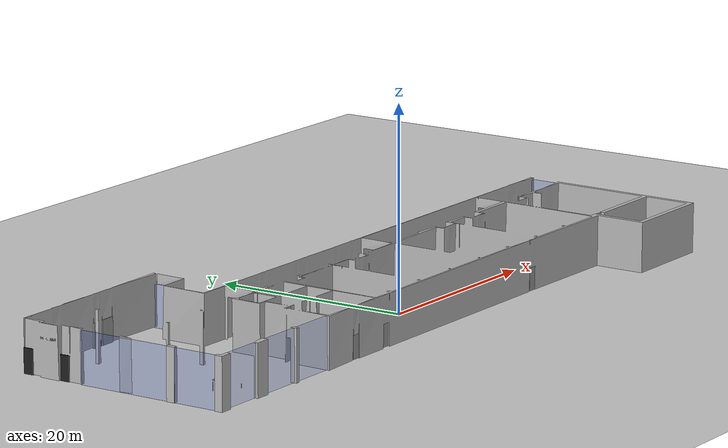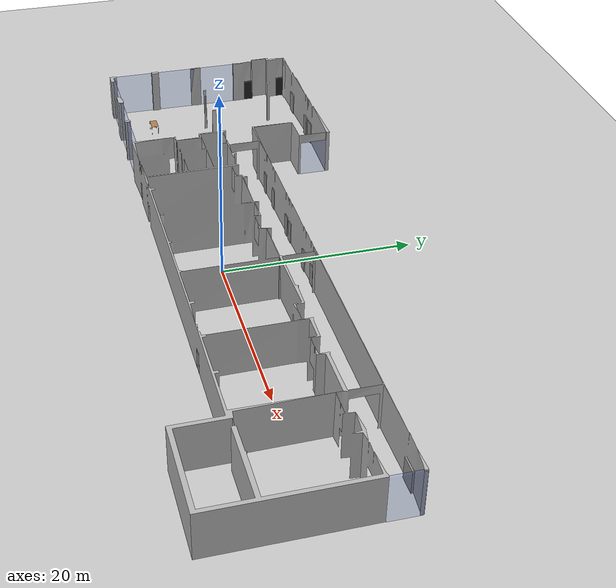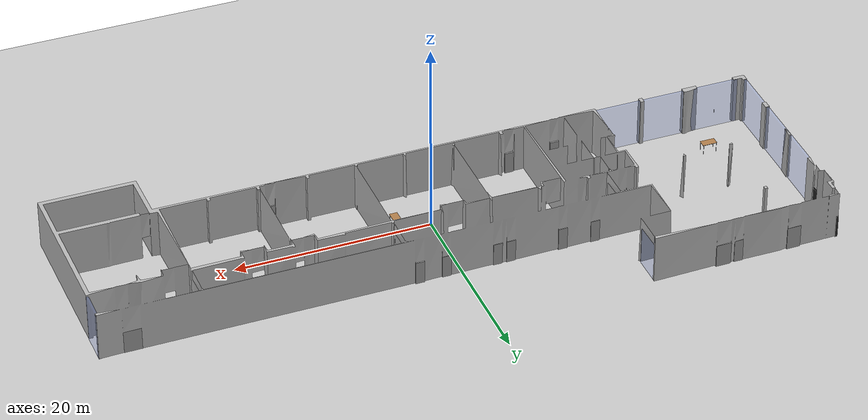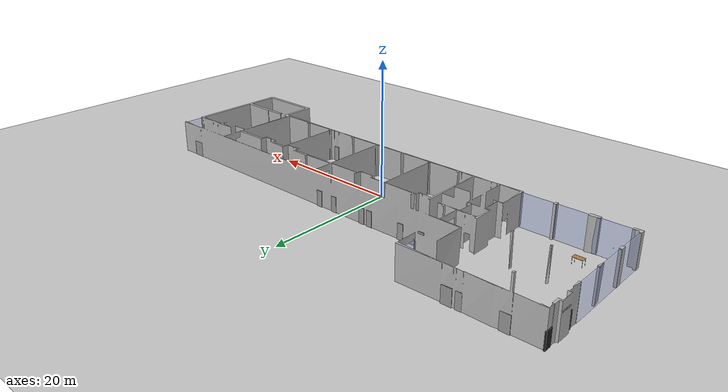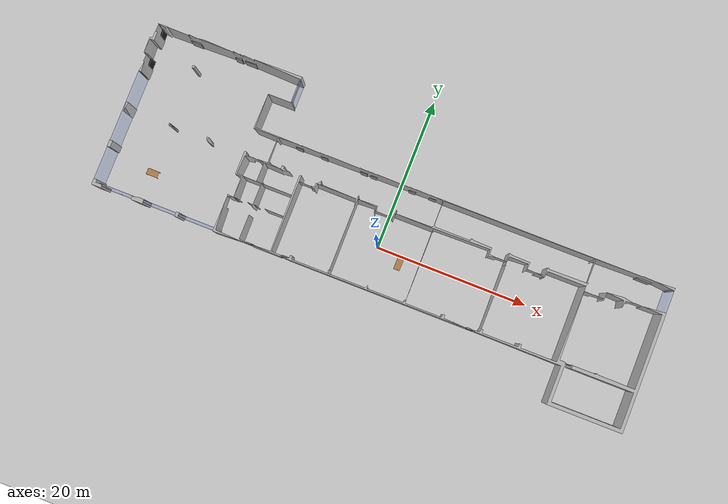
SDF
<sdf version="1.7">
 <world name="default">
  <light name="sun" type="directional">
   <pose>0 0 10 0 -0 0</pose>
   <diffuse>0.8 0.8 0.8 1</diffuse>
   <specular>0.2 0.2 0.2 1</specular>
   <attenuation>
    <range>1000</range>
    <constant>0.9</constant>
    <linear>0.01</linear>
    <quadratic>0.001</quadratic>
   </attenuation>
   <direction>-0.5 0.1 -0.9</direction>
   <spot><inner_angle>0</inner_angle><outer_angle>0</outer_angle><falloff>0</falloff></spot>
  </light>
  <model name="ground_plane">
   <static>1</static>
   <link name="link">
    <collision name="collision">
     <geometry><plane><normal>0 0 1</normal><size>100 100</size></plane></geometry>
     <surface>
      <contact><collide_bitmask>65535</collide_bitmask></contact>
      <friction><ode><mu>100</mu><mu2>50</mu2></ode></friction>
     </surface>
    </collision>
    <visual name="visual">
     <cast_shadows>0</cast_shadows>
     <geometry><plane><normal>0 0 1</normal><size>100 100</size></plane></geometry>
     <material>
      <script><uri>file://media/materials/scripts/gazebo.material</uri><name>Gazebo/Grey</name></script>
     </material>
    </visual>
   </link>
  </model>
  <gravity>0 0 -9.8</gravity>
  <magnetic_field>6e-06 2.3e-05 -4.2e-05</magnetic_field>
  <atmosphere type="adiabatic"/>
  <physics type="ode">
   <max_step_size>0.001</max_step_size>
   <real_time_factor>1</real_time_factor>
   <real_time_update_rate>1000</real_time_update_rate>
  </physics>
  <scene><ambient>0.4 0.4 0.4 1</ambient><background>0.7 0.7 0.7 1</background><shadows>1</shadows></scene>
  <spherical_coordinates>
   <surface_model>EARTH_WGS84</surface_model>
   <latitude_deg>0</latitude_deg>
   <longitude_deg>0</longitude_deg>
   <elevation>0</elevation>
   <heading_deg>0</heading_deg>
  </spherical_coordinates>
  <model name="campus_cham">
   <static>1</static>
   <link name="link_campus">
    <inertial>
     <mass>100000</mass>
     <inertia><ixx>1000</ixx><ixy>0</ixy><ixz>0</ixz><iyy>1000</iyy><iyz>0</iyz><izz>1000</izz></inertia>
    </inertial>
    <pose>0 0 0 1.57 -0 0</pose>
    <gravity>0</gravity>
    <visual name="visual">
     <geometry><mesh><uri>model://campus_cham/meshes/model.obj</uri><scale>1 1 1</scale></mesh></geometry>
    </visual>
    <collision name="collision">
     <geometry><mesh><uri>model://campus_cham/meshes/model.obj</uri><scale>1 1 1</scale></mesh></geometry>
     <surface>
      <friction>
       <ode><mu>1</mu><mu2>1</mu2><fdir1>0 0 0</fdir1><slip1>0</slip1><slip2>0</slip2></ode>
       <torsional>
        <coefficient>1</coefficient>
        <patch_radius>0</patch_radius>
        <surface_radius>0</surface_radius>
        <use_patch_radius>1</use_patch_radius>
        <ode><slip>0</slip></ode>
       </torsional>
      </friction>
      <bounce><restitution_coefficient>0</restitution_coefficient><threshold>1e+06</threshold></bounce>
      <contact>
       <collide_without_contact>0</collide_without_contact>
       <collide_without_contact_bitmask>1</collide_without_contact_bitmask>
       <collide_bitmask>1</collide_bitmask>
       <ode>
        <soft_cfm>0</soft_cfm>
        <soft_erp>0.2</soft_erp>
        <kp>1e+13</kp>
        <kd>1</kd>
        <max_vel>0.01</max_vel>
        <min_depth>0</min_depth>
       </ode>
       <bullet>
        <split_impulse>1</split_impulse>
        <split_impulse_penetration_threshold>-0.01</split_impulse_penetration_threshold>
        <soft_cfm>0</soft_cfm>
        <soft_erp>0.2</soft_erp>
        <kp>1e+13</kp>
        <kd>1</kd>
       </bullet>
      </contact>
     </surface>
    </collision>
   </link>
   <static>1</static>
   <pose>-0.042856 0.006303 -0.003452 0.00635 -0.000458 0.002201</pose>
  </model>
  <model name="table">
   <static>1</static>
   <link name="table0_link">
    <collision name="surface0">
     <pose>0 0 1 0 -0 0</pose>
     <geometry><box><size>1.5 0.8 0.03</size></box></geometry>
     <surface><friction><ode><mu>0.6</mu><mu2>0.6</mu2></ode></friction></surface>
    </collision>
    <visual name="visual0">
     <pose>0 0 1 0 -0 0</pose>
     <geometry><box><size>1.5 0.8 0.03</size></box></geometry>
     <material>
      <script><uri>file://media/materials/scripts/gazebo.material</uri><name>Gazebo/Wood</name></script>
     </material>
    </visual>
    <collision name="c_front_left_leg">
     <pose>0.68 0.38 0.5 0 -0 0</pose>
     <geometry><cylinder><radius>0.02</radius><length>1</length></cylinder></geometry>
    </collision>
    <visual name="v_front_left_leg">
     <pose>0.68 0.38 0.5 0 -0 0</pose>
     <geometry><cylinder><radius>0.02</radius><length>1</length></cylinder></geometry>
     <material>
      <script><uri>file://media/materials/scripts/gazebo.material</uri><name>Gazebo/Grey</name></script>
     </material>
    </visual>
    <collision name="c_front_right_leg">
     <pose>0.68 -0.38 0.5 0 -0 0</pose>
     <geometry><cylinder><radius>0.02</radius><length>1</length></cylinder></geometry>
    </collision>
    <visual name="v_front_right_leg">
     <pose>0.68 -0.38 0.5 0 -0 0</pose>
     <geometry><cylinder><radius>0.02</radius><length>1</length></cylinder></geometry>
     <material>
      <script><uri>file://media/materials/scripts/gazebo.material</uri><name>Gazebo/Grey</name></script>
     </material>
    </visual>
    <collision name="c_back_right_leg">
     <pose>-0.68 -0.38 0.5 0 -0 0</pose>
     <geometry><cylinder><radius>0.02</radius><length>1</length></cylinder></geometry>
    </collision>
    <visual name="v_back_right_leg">
     <pose>-0.68 -0.38 0.5 0 -0 0</pose>
     <geometry><cylinder><radius>0.02</radius><length>1</length></cylinder></geometry>
     <material>
      <script><uri>file://media/materials/scripts/gazebo.material</uri><name>Gazebo/Grey</name></script>
     </material>
    </visual>
    <collision name="c_back_left_leg">
     <pose>-0.68 0.38 0.5 0 -0 0</pose>
     <geometry><cylinder><radius>0.02</radius><length>1</length></cylinder></geometry>
    </collision>
    <visual name="v_back_left_leg">
     <pose>-0.68 0.38 0.5 0 -0 0</pose>
     <geometry><cylinder><radius>0.02</radius><length>1</length></cylinder></geometry>
     <material>
      <script><uri>file://media/materials/scripts/gazebo.material</uri><name>Gazebo/Grey</name></script>
     </material>
    </visual>
   </link>
   <pose>3.25 -1 0 0 0 -1.57</pose>
  </model>
  <model name="table_1">
   <static>1</static>
   <link name="table1_link">
    <collision name="t1_surface1">
     <pose>0 0 1 0 -0 0</pose>
     <geometry><box><size>1.5 0.8 0.03</size></box></geometry>
     <surface><friction><ode><mu>0.6</mu><mu2>0.6</mu2></ode></friction></surface>
    </collision>
    <visual name="t1_visual1">
     <pose>0 0 1 0 -0 0</pose>
     <geometry><box><size>1.5 0.8 0.03</size></box></geometry>
     <material>
      <script><uri>file://media/materials/scripts/gazebo.material</uri><name>Gazebo/Wood</name></script>
     </material>
    </visual>
    <collision name="t1c_front_left_leg">
     <pose>0.68 0.38 0.5 0 -0 0</pose>
     <geometry><cylinder><radius>0.02</radius><length>1</length></cylinder></geometry>
    </collision>
    <visual name="t1v_front_left_leg">
     <pose>0.68 0.38 0.5 0 -0 0</pose>
     <geometry><cylinder><radius>0.02</radius><length>1</length></cylinder></geometry>
     <material>
      <script><uri>file://media/materials/scripts/gazebo.material</uri><name>Gazebo/Grey</name></script>
     </material>
    </visual>
    <collision name="t1c_front_right_leg">
     <pose>0.68 -0.38 0.5 0 -0 0</pose>
     <geometry><cylinder><radius>0.02</radius><length>1</length></cylinder></geometry>
    </collision>
    <visual name="t1v_front_right_leg">
     <pose>0.68 -0.38 0.5 0 -0 0</pose>
     <geometry><cylinder><radius>0.02</radius><length>1</length></cylinder></geometry>
     <material>
      <script><uri>file://media/materials/scripts/gazebo.material</uri><name>Gazebo/Grey</name></script>
     </material>
    </visual>
    <collision name="t1c_back_right_leg">
     <pose>-0.68 -0.38 0.5 0 -0 0</pose>
     <geometry><cylinder><radius>0.02</radius><length>1</length></cylinder></geometry>
    </collision>
    <visual name="t1v_back_right_leg">
     <pose>-0.68 -0.38 0.5 0 -0 0</pose>
     <geometry><cylinder><radius>0.02</radius><length>1</length></cylinder></geometry>
     <material>
      <script><uri>file://media/materials/scripts/gazebo.material</uri><name>Gazebo/Grey</name></script>
     </material>
    </visual>
    <collision name="t1c_back_left_leg">
     <pose>-0.68 0.38 0.5 0 -0 0</pose>
     <geometry><cylinder><radius>0.02</radius><length>1</length></cylinder></geometry>
    </collision>
    <visual name="t1v_back_left_leg">
     <pose>-0.68 0.38 0.5 0 -0 0</pose>
     <geometry><cylinder><radius>0.02</radius><length>1</length></cylinder></geometry>
     <material>
      <script><uri>file://media/materials/scripts/gazebo.material</uri><name>Gazebo/Grey</name></script>
     </material>
    </visual>
   </link>
   <pose>-30 -1.5 0 0 -0 0</pose>
  </model>
  <model name="campus_enclosed">
   <pose>-17.7723 7.99272 0 0 -0 0</pose>
   <link name="Wall_23">
    <collision name="Wall_23_Collision">
     <geometry><box><size>1.05 0.25 2.4</size></box></geometry>
     <pose>0 0 1.2 0 -0 0</pose>
    </collision>
    <visual name="Wall_23_Visual">
     <pose>0 0 1.2 0 -0 0</pose>
     <geometry><box><size>1.05 0.25 2.4</size></box></geometry>
     <material>
      <script><uri>file://media/materials/scripts/gazebo.material</uri><name>Gazebo/Black</name></script>
     </material>
     <meta><layer>0</layer></meta>
     <transparency>0.0</transparency>
    </visual>
    <pose>-17.667 7.4375 0 0 -0 -1.5708</pose>
   </link>
   <link name="Wall_25">
    <collision name="Wall_25_Collision">
     <geometry><box><size>1.007 0.25 2.4</size></box></geometry>
     <pose>0 0 1.2 0 -0 0</pose>
    </collision>
    <visual name="Wall_25_Visual">
     <pose>0 0 1.2 0 -0 0</pose>
     <geometry><box><size>1.007 0.25 2.4</size></box></geometry>
     <material>
      <script><uri>file://media/materials/scripts/gazebo.material</uri><name>Gazebo/Black</name></script>
     </material>
     <meta><layer>0</layer></meta>
     <transparency>0.1</transparency>
    </visual>
    <pose>-17.682 3.416 0 0 -0 1.5708</pose>
   </link>
   <static>1</static>
  </model>
  <model name="campus_doors">
   <pose>0.17 5.2 0 0 -0 0</pose>
   <link name="Door_10">
    <collision name="Door_10_Collision">
     <geometry><box><size>0.92 0.17 2.35</size></box></geometry>
     <pose>0 0 1.175 0 -0 0</pose>
    </collision>
    <visual name="Door_10_Visual">
     <pose>0 0 1.175 0 -0 0</pose>
     <geometry><box><size>0.92 0.17 2.35</size></box></geometry>
     <material>
      <script><uri>file://media/materials/scripts/gazebo.material</uri><name>Gazebo/Grey</name></script>
     </material>
    </visual>
    <pose>-13.81 2.8905 0 0 -0 0</pose>
   </link>
   <link name="Door_11">
    <collision name="Door_11_Collision">
     <geometry><box><size>1.52 0.17 2.4</size></box></geometry>
     <pose>0 0 1.2 0 -0 0</pose>
    </collision>
    <visual name="Door_11_Visual">
     <pose>0 0 1.2 0 -0 0</pose>
     <geometry><box><size>1.52 0.17 2.4</size></box></geometry>
     <material>
      <script><uri>file://media/materials/scripts/gazebo.material</uri><name>Gazebo/Grey</name></script>
     </material>
    </visual>
    <pose>-23.6447 10.8106 0 0 -0 0</pose>
   </link>
   <link name="Door_12">
    <collision name="Door_12_Collision">
     <geometry><box><size>0.91 0.17 2.4</size></box></geometry>
     <pose>0 0 1.2 0 -0 0</pose>
    </collision>
    <visual name="Door_12_Visual">
     <pose>0 0 1.2 0 -0 0</pose>
     <geometry><box><size>0.91 0.17 2.4</size></box></geometry>
     <material>
      <script><uri>file://media/materials/scripts/gazebo.material</uri><name>Gazebo/Grey</name></script>
     </material>
    </visual>
    <pose>-25.226 10.7495 0 0 -0 0</pose>
   </link>
   <link name="Door_13">
    <collision name="Door_13_Collision">
     <geometry><box><size>1.4 0.17 2.4</size></box></geometry>
     <pose>0 0 1.2 0 -0 0</pose>
    </collision>
    <visual name="Door_13_Visual">
     <pose>0 0 1.2 0 -0 0</pose>
     <geometry><box><size>1.4 0.17 2.4</size></box></geometry>
     <material>
      <script><uri>file://media/materials/scripts/gazebo.material</uri><name>Gazebo/Grey</name></script>
     </material>
    </visual>
    <pose>-31.026 10.7495 0 0 -0 0</pose>
   </link>
   <link name="Door_17">
    <collision name="Door_17_Collision">
     <geometry><box><size>0.93 0.17 2.35</size></box></geometry>
     <pose>0 0 1.175 0 -0 0</pose>
    </collision>
    <visual name="Door_17_Visual">
     <pose>0 0 1.175 0 -0 0</pose>
     <geometry><box><size>0.93 0.17 2.35</size></box></geometry>
     <material>
      <script><uri>file://media/materials/scripts/gazebo.material</uri><name>Gazebo/Grey</name></script>
     </material>
    </visual>
    <pose>14.254 -10.6365 0 0 -0 0</pose>
   </link>
   <link name="Door_18">
    <collision name="Door_18_Collision">
     <geometry><box><size>0.9 0.17 2.3</size></box></geometry>
     <pose>0 0 1.15 0 -0 0</pose>
    </collision>
    <visual name="Door_18_Visual">
     <pose>0 0 1.15 0 -0 0</pose>
     <geometry><box><size>0.9 0.17 2.3</size></box></geometry>
     <material>
      <script><uri>file://media/materials/scripts/gazebo.material</uri><name>Gazebo/Grey</name></script>
     </material>
    </visual>
    <pose>-15.256 -10.6365 0 0 -0 0</pose>
   </link>
   <link name="Door_19">
    <collision name="Door_19_Collision">
     <geometry><box><size>0.91 0.17 2.3</size></box></geometry>
     <pose>0 0 1.15 0 -0 0</pose>
    </collision>
    <visual name="Door_19_Visual">
     <pose>0 0 1.15 0 -0 0</pose>
     <geometry><box><size>0.91 0.17 2.3</size></box></geometry>
     <material>
      <script><uri>file://media/materials/scripts/gazebo.material</uri><name>Gazebo/Grey</name></script>
     </material>
    </visual>
    <pose>-10.416 -10.5365 0 0 -0 0</pose>
   </link>
   <link name="Door_4">
    <collision name="Door_4_Collision">
     <geometry><box><size>1.9 0.17 2.35</size></box></geometry>
     <pose>0 0 1.175 0 -0 0</pose>
    </collision>
    <visual name="Door_4_Visual">
     <pose>0 0 1.175 0 -0 0</pose>
     <geometry><box><size>1.9 0.17 2.35</size></box></geometry>
     <material>
      <script><uri>file://media/materials/scripts/gazebo.material</uri><name>Gazebo/Grey</name></script>
     </material>
    </visual>
    <pose>32.374 2.9105 0 0 -0 0</pose>
   </link>
   <link name="Door_5">
    <collision name="Door_5_Collision">
     <geometry><box><size>0.92 0.17 2.4</size></box></geometry>
     <pose>0 0 1.2 0 -0 0</pose>
    </collision>
    <visual name="Door_5_Visual">
     <pose>0 0 1.2 0 -0 0</pose>
     <geometry><box><size>0.92 0.17 2.4</size></box></geometry>
     <material>
      <script><uri>file://media/materials/scripts/gazebo.material</uri><name>Gazebo/Grey</name></script>
     </material>
    </visual>
    <pose>4.12402 2.9715 0 0 -0 0</pose>
   </link>
   <link name="Door_6">
    <collision name="Door_6_Collision">
     <geometry><box><size>0.92 0.17 2.34</size></box></geometry>
     <pose>0 0 1.17 0 -0 0</pose>
    </collision>
    <visual name="Door_6_Visual">
     <pose>0 0 1.17 0 -0 0</pose>
     <geometry><box><size>0.92 0.17 2.34</size></box></geometry>
     <material>
      <script><uri>file://media/materials/scripts/gazebo.material</uri><name>Gazebo/Grey</name></script>
     </material>
    </visual>
    <pose>1.40402 2.9105 0 0 -0 0</pose>
   </link>
   <link name="Door_7">
    <collision name="Door_7_Collision">
     <geometry><box><size>0.92 0.17 2.35</size></box></geometry>
     <pose>0 0 1.175 0 -0 0</pose>
    </collision>
    <visual name="Door_7_Visual">
     <pose>0 0 1.175 0 -0 0</pose>
     <geometry><box><size>0.92 0.17 2.35</size></box></geometry>
     <material>
      <script><uri>file://media/materials/scripts/gazebo.material</uri><name>Gazebo/Grey</name></script>
     </material>
    </visual>
    <pose>-3.77598 2.9105 0 0 -0 0</pose>
   </link>
   <link name="Door_8">
    <collision name="Door_8_Collision">
     <geometry><box><size>0.92 0.17 2.35</size></box></geometry>
     <pose>0 0 1.175 0 -0 0</pose>
    </collision>
    <visual name="Door_8_Visual">
     <pose>0 0 1.175 0 -0 0</pose>
     <geometry><box><size>0.92 0.17 2.35</size></box></geometry>
     <material>
      <script><uri>file://media/materials/scripts/gazebo.material</uri><name>Gazebo/Grey</name></script>
     </material>
    </visual>
    <pose>-5.12598 2.9105 0 0 -0 0</pose>
   </link>
   <link name="Door_9">
    <collision name="Door_9_Collision">
     <geometry><box><size>0.92 0.17 2.35</size></box></geometry>
     <pose>0 0 1.175 0 -0 0</pose>
    </collision>
    <visual name="Door_9_Visual">
     <pose>0 0 1.175 0 -0 0</pose>
     <geometry><box><size>0.92 0.17 2.35</size></box></geometry>
     <material>
      <script><uri>file://media/materials/scripts/gazebo.material</uri><name>Gazebo/Grey</name></script>
     </material>
    </visual>
    <pose>-10.4593 2.91092 0 0 -0 0</pose>
   </link>
   <link name="Wall_15">
    <collision name="Wall_15_Collision">
     <geometry><box><size>3 0.25 4.1</size></box></geometry>
     <pose>0 0 2.05 0 -0 0</pose>
    </collision>
    <visual name="Wall_15_Visual">
     <pose>0 0 2.05 0 -0 0</pose>
     <geometry><box><size>3 0.25 4.1</size></box></geometry>
     <material>
      <script><uri>file://media/materials/scripts/gazebo.material</uri><name>Gazebo/Blue</name></script>
      <ambient>1 1 1 1</ambient>
     </material>
     <meta><layer>0</layer></meta>
     <transparency>0.9</transparency>
    </visual>
    <pose>-16.626 9.1885 0 0 -0 1.5708</pose>
   </link>
   <link name="Wall_2">
    <collision name="Wall_2_Collision">
     <geometry><box><size>15.404 0.25 4.9</size></box></geometry>
     <pose>0 0 2.45 0 -0 0</pose>
    </collision>
    <visual name="Wall_2_Visual">
     <pose>0 0 2.45 0 -0 0</pose>
     <geometry><box><size>15.404 0.25 4.9</size></box></geometry>
     <material>
      <script><uri>file://media/materials/scripts/gazebo.material</uri><name>Gazebo/Blue</name></script>
      <ambient>1 1 1 1</ambient>
     </material>
     <meta><layer>0</layer></meta>
     <transparency>0.9</transparency>
    </visual>
    <pose>-27.1655 -10.5635 0 0 -0 3.14159</pose>
   </link>
   <link name="Wall_4">
    <pose>-35.624 -2.9675 0 0 -0 1.5708</pose>
    <visual name="Wall_4_Visual_0">
     <pose>0 0 2.45 0 -0 0</pose>
     <geometry><box><size>14.712 0.25 4.9</size></box></geometry>
     <material>
      <script><uri>file://media/materials/scripts/gazebo.material</uri><name>Gazebo/Blue</name></script>
      <ambient>1 1 1 1</ambient>
     </material>
     <meta><layer>0</layer></meta>
     <transparency>0.9</transparency>
    </visual>
    <collision name="Wall_4_Collision_0">
     <geometry><box><size>14.712 0.25 4.9</size></box></geometry>
     <pose>0 0 2.45 0 -0 0</pose>
    </collision>
   </link>
   <link name="Wall_9">
    <collision name="Wall_9_Collision">
     <geometry><box><size>3.164 0.25 4.9</size></box></geometry>
     <pose>0 0 2.45 0 -0 0</pose>
    </collision>
    <visual name="Wall_9_Visual">
     <pose>0 0 2.45 0 -0 0</pose>
     <geometry><box><size>3.164 0.25 4.9</size></box></geometry>
     <material>
      <script><uri>file://media/materials/scripts/gazebo.material</uri><name>Gazebo/Blue</name></script>
      <ambient>1 1 1 1</ambient>
     </material>
     <meta><layer>0</layer></meta>
     <transparency>0.9</transparency>
    </visual>
    <pose>35.624 1.4705 0 0 -0 -1.5708</pose>
   </link>
   <static>1</static>
  </model>
 </world>
</sdf>
